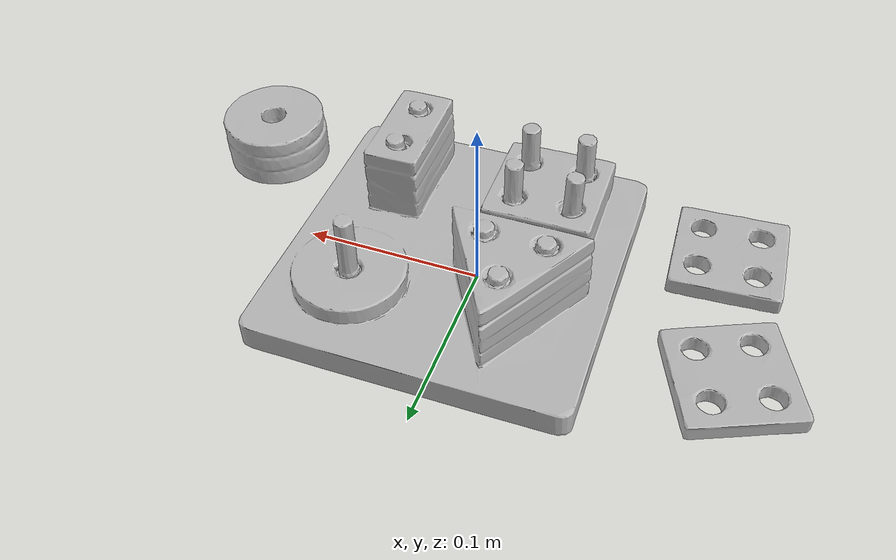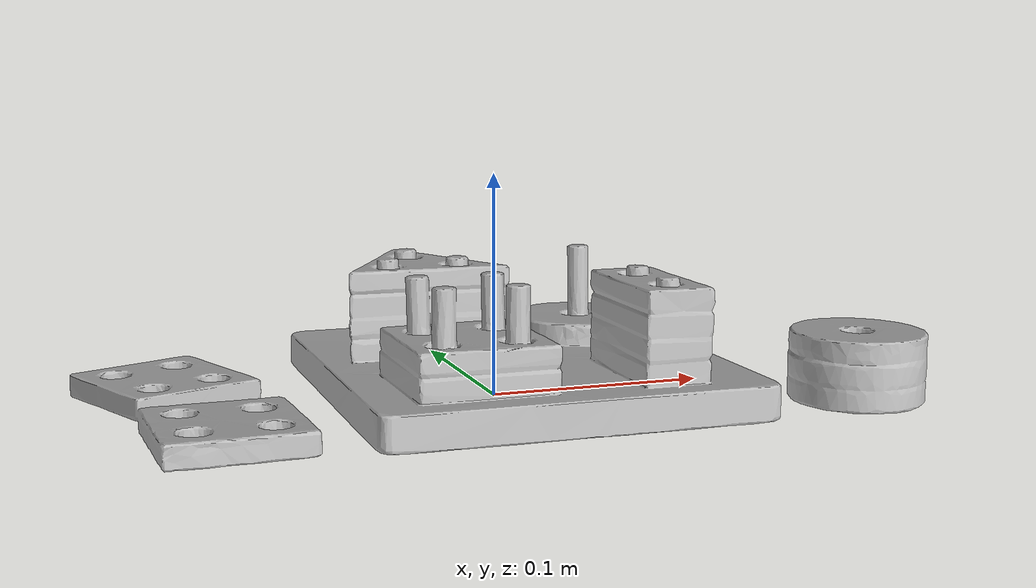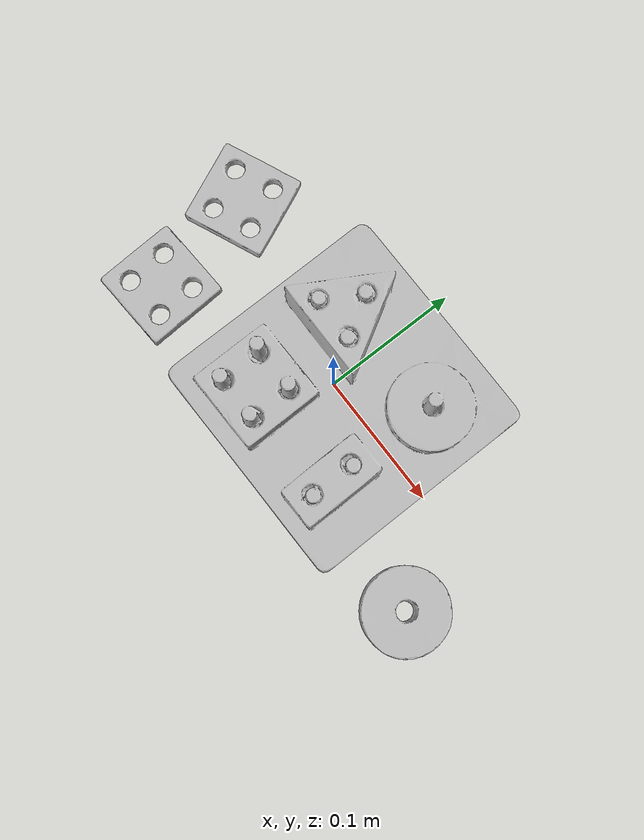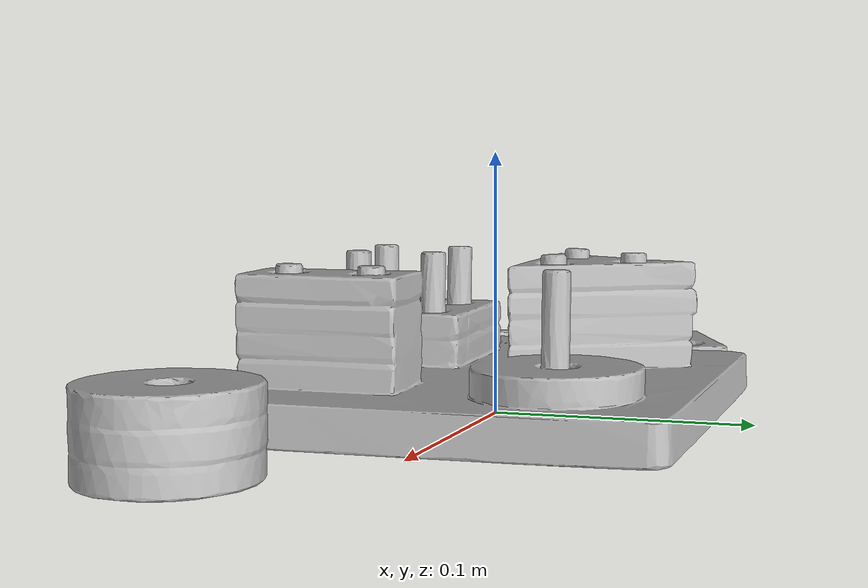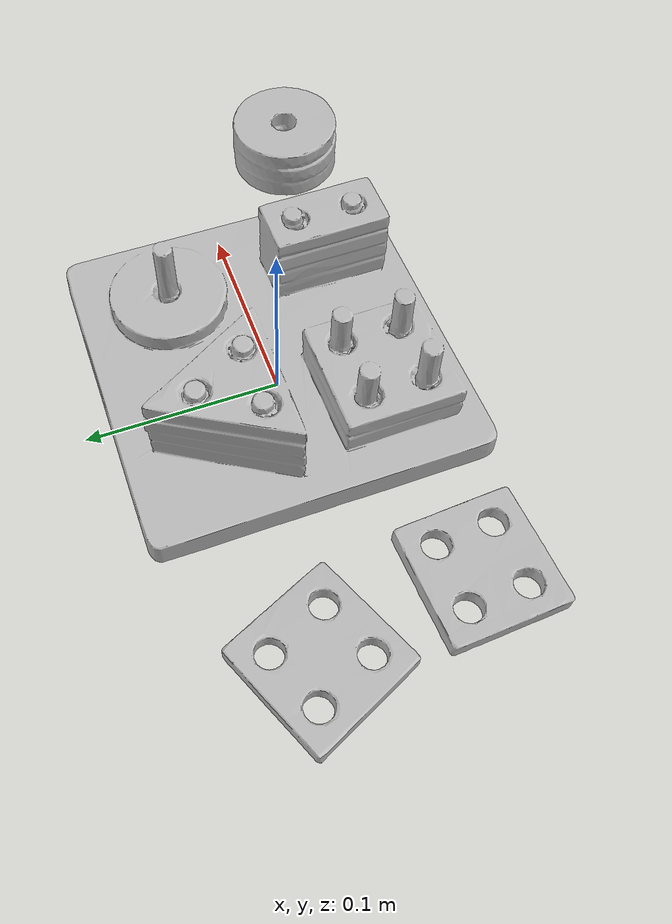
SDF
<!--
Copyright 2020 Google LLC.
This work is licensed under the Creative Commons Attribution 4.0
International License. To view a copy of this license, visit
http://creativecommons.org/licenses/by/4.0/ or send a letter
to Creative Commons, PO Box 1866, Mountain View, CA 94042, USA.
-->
<?xml version="1.0" ?>
<sdf version="1.6">
  <model name="GEOMETRIC_SORTING_BOARD_MNi4Rbuz9vj">
    <link name="link_0">
      <visual name="visual">
        <geometry>
          <mesh>
            <uri>meshes/model.obj</uri>
          </mesh>
        </geometry>
      </visual>
      <collision name="collision_0">
        <geometry>
          <mesh>
            <uri>meshes/model.obj</uri>
          </mesh>
        </geometry>
      </collision>
    </link>
  </model>
</sdf>
